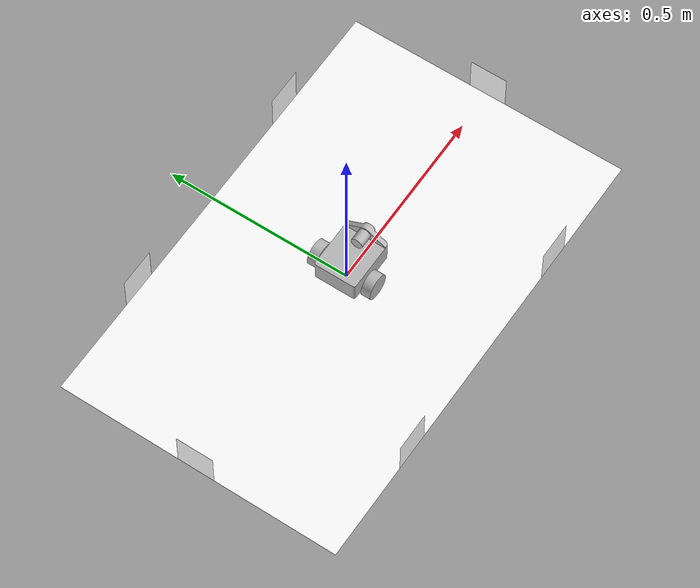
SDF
<?xml version="1.0"?>
<sdf version="1.7">
    <world name="training_world">
        <gravity>0 0 0</gravity>

        <light type="directional" name="sun">
            <cast_shadows>true</cast_shadows>
            <pose>0 0 1 0 0 0</pose>
            <diffuse>1.0 1.0 1.0 1</diffuse>
            <specular>0.2 0.2 0.2 1</specular>
            <attenuation>
                <range>1000</range>
                <constant>0.9</constant>
                <linear>0.01</linear>
                <quadratic>0.001</quadratic>
            </attenuation>
            <direction>0.0 0.0 -1.0</direction>
        </light>

        <include>
            <uri>model://floor_mat</uri>
            <static>true</static>
        </include>

        <include>
            <uri>model://traini</uri>
        </include>

        <include>
            <uri>model://aruco_tag_0</uri>
            <static>true</static>
            <pose>0.6096 0 0.05 1.57079632679 0 -1.57079632679</pose>
        </include>

        <include>
            <uri>model://aruco_tag_1</uri>
            <static>true</static>
            <pose>0.3 -0.381 0.05 1.57079632679 0 3.14159265359</pose>
        </include>

        <include>
            <uri>model://aruco_tag_2</uri>
            <static>true</static>
            <pose>-0.3 -0.381 0.05 1.57079632679 0 3.14159265359</pose>
        </include>

        <include>
            <uri>model://aruco_tag_3</uri>
            <static>true</static>
            <pose>-0.6096 0 0.05 1.57079632679 0 1.57079632679</pose>
        </include>

        <include>
            <uri>model://aruco_tag_4</uri>
            <static>true</static>
            <pose>-0.3 0.381 0.05 1.57079632679 0 0</pose>
        </include>

        <include>
            <uri>model://aruco_tag_5</uri>
            <static>true</static>
            <pose>0.3 0.381 0.05 1.57079632679 0 0</pose>
        </include>

    </world>
</sdf>

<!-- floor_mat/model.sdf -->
<sdf version="1.8">
  <model name="Floor Mat">
    <link name="link">
      <visual name="Plane">
        <geometry>
          <mesh>
            <uri>meshes/model.dae</uri>
            <submesh>
              <name>Plane</name>
            </submesh>
          </mesh>
        </geometry>
        <material>
          <diffuse>1.0 1.0 1.0 1.0</diffuse>
          <specular>0.0 0.0 0.0 1.0</specular>
          <pbr>
            <metal>
              <albedo_map>meshes/floor_mat.png</albedo_map>
            </metal>
          </pbr>
        </material>
      </visual>
      <collision name="collision">
        <geometry>
          <mesh>
            <uri>meshes/model.dae</uri>
          </mesh>
        </geometry>
        <surface/>
        <contact/>
        <collide_bitmask>0x01</collide_bitmask>
      </collision>
    </link>
  </model>
  <static>true</static>
</sdf>

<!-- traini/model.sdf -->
<sdf version='1.7'>
    <model name='Traini' canonical_link="base_footprint">

        <link name="base_footprint">
            <kinematic>true</kinematic>
        </link>

        <link name='base_link'>
            <pose relative_to="base_footprint">0 0 0.0325 0 0 0</pose>
            <visual name='visual'>
                <pose>0 0 -0.0325 0 0 0</pose>
                <geometry>
                    <mesh>
                        <uri>model://traini/meshes/Trainiii.dae</uri>
                    </mesh>
                </geometry>
            </visual>
        </link>
        <joint name="base_link_joint" type="fixed">
            <parent>base_footprint</parent>
            <child>base_link</child>
        </joint>

        <link name="camera_link">
            <pose relative_to="base_link">0.1 0 0.055 0 0.3 0</pose>
            <sensor name="camera" type="camera">
                <update_rate>10</update_rate>
                <camera name="camera">
                    <horizontal_fov>1.085595</horizontal_fov>
                    <image>
                        <width>640</width>
                        <height>480</height>
                        <format>R8G8B8</format>
                    </image>
                </camera>
            </sensor>
        </link>
        <joint name="camera_joint" type="fixed">
            <parent>base_link</parent>
            <child>camera_link</child>
        </joint>

        <link name="imu_link">
            <pose relative_to="base_link">0 0 0 0 0 0</pose>
            <sensor name="imu" type="imu">
                <always_on>true</always_on>
                <update_rate>30</update_rate>
            </sensor>
        </link>
        <joint name="imu_joint" type="fixed">
            <parent>base_link</parent>
            <child>imu_link</child>
        </joint>

        <link name="light_link">
            <pose relative_to="base_link">0 0 0.04 0 0 0</pose>
            <visual name="indicator_light">
                <geometry>
                    <sphere>
                        <radius>0.005</radius>
                    </sphere>
                </geometry>
                <transparency>0.4</transparency>
                <material>
                    <ambient>0.5 1 0.5 1</ambient>
                    <diffuse>0.5 1 0.5 1</diffuse>
                    <specular>1 1 1 1</specular>
                    <emissive>0.5 1 0.5 1</emissive>
                </material>
            </visual>
        </link>
        <joint name="light_joint" type="fixed">
            <parent>base_link</parent>
            <child>light_link</child>
        </joint>
    </model>
</sdf>

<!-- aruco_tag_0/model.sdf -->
<sdf version="1.8">
  <model name="aruco_tag_0">
    <link name="testlink">
      <visual name="Tag 0">
        <geometry>
          <mesh>
            <uri>meshes/model.dae</uri>
            <submesh>
              <name>Tag 0</name>
            </submesh>
          </mesh>
        </geometry>
        <material>
          <diffuse>1.0 1.0 1.0 1.0</diffuse>
          <specular>0.0 0.0 0.0 1.0</specular>
          <pbr>
            <metal>
              <albedo_map>meshes/ArUcoTag0.jpg</albedo_map>
            </metal>
          </pbr>
        </material>
      </visual>
      <collision name="collision">
        <geometry>
          <mesh>
            <uri>meshes/model.dae</uri>
          </mesh>
        </geometry>
        <surface/>
        <contact/>
        <collide_bitmask>0x01</collide_bitmask>
      </collision>
    </link>
  </model>
  <static>true</static>
</sdf>

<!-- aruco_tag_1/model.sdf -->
<sdf version="1.8">
  <model name="aruco_tag_1">
    <link name="testlink">
      <visual name="Tag">
        <geometry>
          <mesh>
            <uri>meshes/model.dae</uri>
            <submesh>
              <name>Tag</name>
            </submesh>
          </mesh>
        </geometry>
        <material>
          <diffuse>1.0 1.0 1.0 1.0</diffuse>
          <specular>0.0 0.0 0.0 1.0</specular>
          <pbr>
            <metal>
              <albedo_map>meshes/ArUcoTag1.jpg</albedo_map>
            </metal>
          </pbr>
        </material>
      </visual>
      <collision name="collision">
        <geometry>
          <mesh>
            <uri>meshes/model.dae</uri>
          </mesh>
        </geometry>
        <surface/>
        <contact/>
        <collide_bitmask>0x01</collide_bitmask>
      </collision>
    </link>
  </model>
  <static>true</static>
</sdf>

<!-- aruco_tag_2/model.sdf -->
<sdf version="1.8">
  <model name="aruco_tag_2">
    <link name="testlink">
      <visual name="Tag">
        <geometry>
          <mesh>
            <uri>meshes/model.dae</uri>
            <submesh>
              <name>Tag</name>
            </submesh>
          </mesh>
        </geometry>
        <material>
          <diffuse>1.0 1.0 1.0 1.0</diffuse>
          <specular>0.0 0.0 0.0 1.0</specular>
          <pbr>
            <metal>
              <albedo_map>meshes/ArUcoTag2.jpg</albedo_map>
            </metal>
          </pbr>
        </material>
      </visual>
      <collision name="collision">
        <geometry>
          <mesh>
            <uri>meshes/model.dae</uri>
          </mesh>
        </geometry>
        <surface/>
        <contact/>
        <collide_bitmask>0x01</collide_bitmask>
      </collision>
    </link>
  </model>
  <static>true</static>
</sdf>

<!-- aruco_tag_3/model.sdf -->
<sdf version="1.8">
  <model name="aruco_tag_3">
    <link name="testlink">
      <visual name="Tag">
        <geometry>
          <mesh>
            <uri>meshes/model.dae</uri>
            <submesh>
              <name>Tag</name>
            </submesh>
          </mesh>
        </geometry>
        <material>
          <diffuse>1.0 1.0 1.0 1.0</diffuse>
          <specular>0.0 0.0 0.0 1.0</specular>
          <pbr>
            <metal>
              <albedo_map>meshes/ArUcoTag3.jpg</albedo_map>
            </metal>
          </pbr>
        </material>
      </visual>
      <collision name="collision">
        <geometry>
          <mesh>
            <uri>meshes/model.dae</uri>
          </mesh>
        </geometry>
        <surface/>
        <contact/>
        <collide_bitmask>0x01</collide_bitmask>
      </collision>
    </link>
  </model>
  <static>true</static>
</sdf>

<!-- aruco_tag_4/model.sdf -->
<sdf version="1.8">
  <model name="aruco_tag_4">
    <link name="testlink">
      <visual name="Tag">
        <geometry>
          <mesh>
            <uri>meshes/model.dae</uri>
            <submesh>
              <name>Tag</name>
            </submesh>
          </mesh>
        </geometry>
        <material>
          <diffuse>1.0 1.0 1.0 1.0</diffuse>
          <specular>0.0 0.0 0.0 1.0</specular>
          <pbr>
            <metal>
              <albedo_map>meshes/ArUcoTag4.jpg</albedo_map>
            </metal>
          </pbr>
        </material>
      </visual>
      <collision name="collision">
        <geometry>
          <mesh>
            <uri>meshes/model.dae</uri>
          </mesh>
        </geometry>
        <surface/>
        <contact/>
        <collide_bitmask>0x01</collide_bitmask>
      </collision>
    </link>
  </model>
  <static>true</static>
</sdf>

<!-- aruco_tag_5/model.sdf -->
<sdf version="1.8">
  <model name="aruco_tag_5">
    <link name="testlink">
      <visual name="Tag">
        <geometry>
          <mesh>
            <uri>meshes/model.dae</uri>
            <submesh>
              <name>Tag</name>
            </submesh>
          </mesh>
        </geometry>
        <material>
          <diffuse>1.0 1.0 1.0 1.0</diffuse>
          <specular>0.0 0.0 0.0 1.0</specular>
          <pbr>
            <metal>
              <albedo_map>meshes/ArUcoTag5.jpg</albedo_map>
            </metal>
          </pbr>
        </material>
      </visual>
      <collision name="collision">
        <geometry>
          <mesh>
            <uri>meshes/model.dae</uri>
          </mesh>
        </geometry>
        <surface/>
        <contact/>
        <collide_bitmask>0x01</collide_bitmask>
      </collision>
    </link>
  </model>
  <static>true</static>
</sdf>
